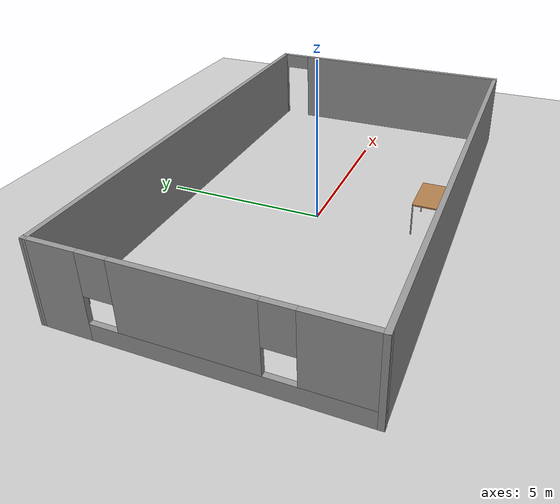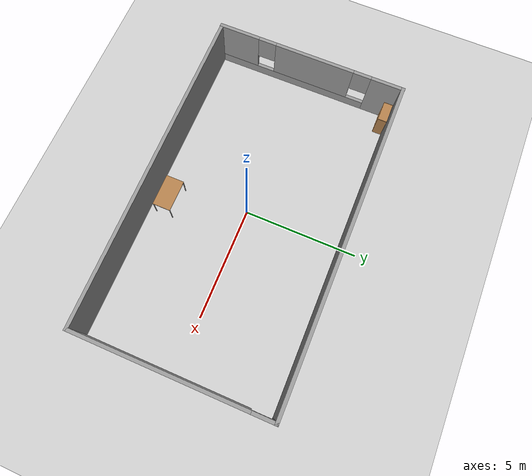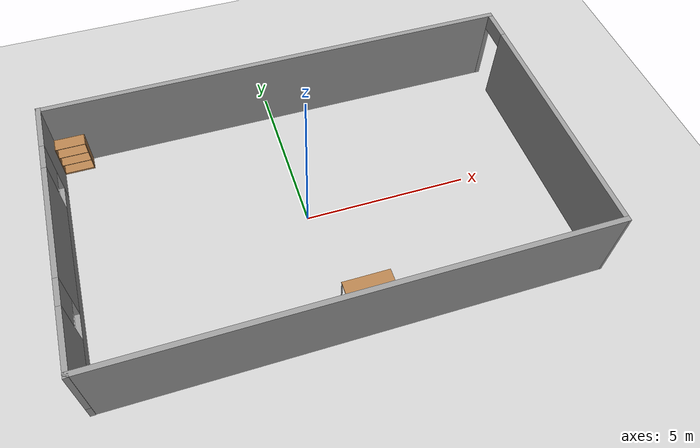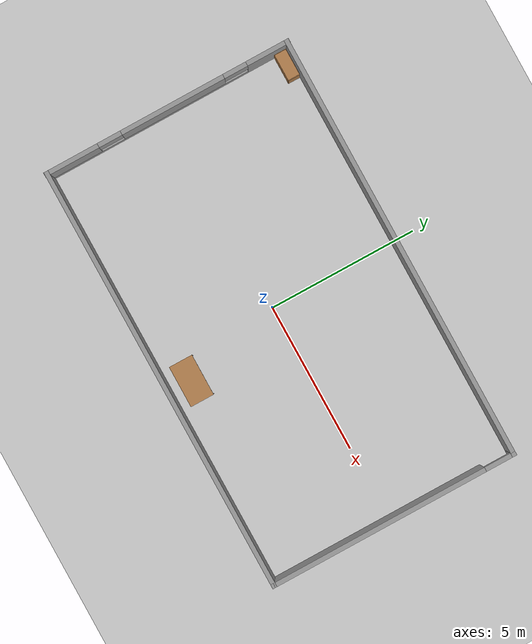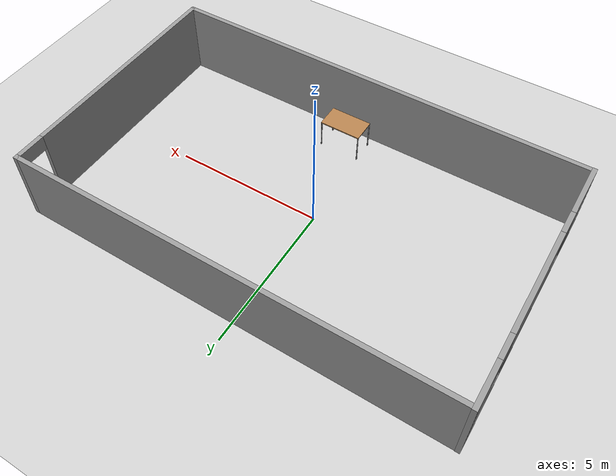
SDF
<sdf version="1.6">
 <world name="default">
  <light name="sun" type="directional">
   <pose>0 0 15 0 -0 0</pose>
   <diffuse>1 1 1 1</diffuse>
   <specular>0.1 0.1 0.1 1</specular>
   <attenuation>
    <range>1000</range>
    <constant>0.9</constant>
    <linear>0.01</linear>
    <quadratic>0.001</quadratic>
   </attenuation>
   <direction>-0.5 0.5 -1</direction>
  </light>
  <model name="ground_plane">
   <static>1</static>
   <link name="link">
    <collision name="collision">
     <geometry><plane><normal>0 0 1</normal><size>100 100</size></plane></geometry>
     <surface><friction><ode><mu>100</mu><mu2>50</mu2></ode></friction></surface>
    </collision>
    <visual name="visual">
     <cast_shadows>0</cast_shadows>
     <geometry><plane><normal>0 0 1</normal><size>100 100</size></plane></geometry>
     <material>
      <script><uri>file://media/materials/scripts/gazebo.material</uri><name>Gazebo/Grey</name></script>
     </material>
    </visual>
   </link>
  </model>
  <gravity>0 0 -9.8</gravity>
  <magnetic_field>6e-06 2.3e-05 -4.2e-05</magnetic_field>
  <atmosphere type="adiabatic"/>
  <physics name="default_physics" default="0" type="ode">
   <max_step_size>0.001</max_step_size>
   <real_time_factor>1</real_time_factor>
   <real_time_update_rate>1000</real_time_update_rate>
  </physics>
  <scene><ambient>0.4 0.4 0.4 1</ambient><background>0.7 0.7 0.7 1</background><shadows>1</shadows></scene>
  <spherical_coordinates>
   <surface_model>EARTH_WGS84</surface_model>
   <latitude_deg>0</latitude_deg>
   <longitude_deg>0</longitude_deg>
   <elevation>0</elevation>
   <heading_deg>0</heading_deg>
  </spherical_coordinates>
  <model name="myroom">
   <pose>0.293025 0.109105 0 0 -0 0</pose>
   <link name="Wall_1">
    <collision name="Wall_1_Collision">
     <geometry><box><size>14.4903 0.15 2.5</size></box></geometry>
     <pose>0 0 1.25 0 -0 0</pose>
    </collision>
    <visual name="Wall_1_Visual">
     <pose>0 0 1.25 0 -0 0</pose>
     <geometry><box><size>14.4903 0.15 2.5</size></box></geometry>
     <material>
      <script><uri>file://media/materials/scripts/gazebo.material</uri><name>Gazebo/Grey</name></script>
      <ambient>1 1 1 1</ambient>
     </material>
    </visual>
    <pose>0.004925 -4.17 0 0 -0 0.001395</pose>
   </link>
   <link name="Wall_2">
    <pose>7.17492 0.01 0 0 -0 1.5708</pose>
    <visual name="Wall_2_Visual_0">
     <pose>-0.5275 0 1.25 0 -0 0</pose>
     <geometry><box><size>7.435 0.15 2.5</size></box></geometry>
     <material>
      <script><uri>file://media/materials/scripts/gazebo.material</uri><name>Gazebo/Grey</name></script>
      <ambient>1 1 1 1</ambient>
     </material>
    </visual>
    <collision name="Wall_2_Collision_0">
     <geometry><box><size>7.435 0.15 2.5</size></box></geometry>
     <pose>-0.5275 0 1.25 0 -0 0</pose>
    </collision>
    <visual name="Wall_2_Visual_1">
     <pose>4.1675 0 1.25 0 -0 0</pose>
     <geometry><box><size>0.155 0.15 2.5</size></box></geometry>
     <material>
      <script><uri>file://media/materials/scripts/gazebo.material</uri><name>Gazebo/Grey</name></script>
      <ambient>1 1 1 1</ambient>
     </material>
    </visual>
    <collision name="Wall_2_Collision_1">
     <geometry><box><size>0.155 0.15 2.5</size></box></geometry>
     <pose>4.1675 0 1.25 0 -0 0</pose>
    </collision>
    <visual name="Wall_2_Visual_2">
     <pose>3.64 0 2.25 0 -0 0</pose>
     <geometry><box><size>0.9 0.15 0.5</size></box></geometry>
     <material>
      <script><uri>file://media/materials/scripts/gazebo.material</uri><name>Gazebo/Grey</name></script>
      <ambient>1 1 1 1</ambient>
     </material>
    </visual>
    <collision name="Wall_2_Collision_2">
     <geometry><box><size>0.9 0.15 0.5</size></box></geometry>
     <pose>3.64 0 2.25 0 -0 0</pose>
    </collision>
   </link>
   <link name="Wall_3">
    <collision name="Wall_3_Collision">
     <geometry><box><size>14.5 0.15 2.5</size></box></geometry>
     <pose>0 0 1.25 0 -0 0</pose>
    </collision>
    <visual name="Wall_3_Visual">
     <pose>0 0 1.25 0 -0 0</pose>
     <geometry><box><size>14.5 0.15 2.5</size></box></geometry>
     <material>
      <script><uri>file://media/materials/scripts/gazebo.material</uri><name>Gazebo/Grey</name></script>
      <ambient>1 1 1 1</ambient>
     </material>
    </visual>
    <pose>-7.5e-05 4.18 0 0 -0 3.14159</pose>
   </link>
   <link name="Wall_4">
    <pose>-7.17007 0 0 0 0 -1.5696</pose>
    <visual name="Wall_4_Visual_0">
     <pose>-3.51752 0 1.25 0 -0 0</pose>
     <geometry><box><size>1.49497 0.15 2.5</size></box></geometry>
     <material>
      <script><uri>file://media/materials/scripts/gazebo.material</uri><name>Gazebo/Grey</name></script>
      <ambient>1 1 1 1</ambient>
     </material>
    </visual>
    <collision name="Wall_4_Collision_0">
     <geometry><box><size>1.49497 0.15 2.5</size></box></geometry>
     <pose>-3.51752 0 1.25 0 -0 0</pose>
    </collision>
    <visual name="Wall_4_Visual_1">
     <pose>0.747487 0 0.25 0 -0 0</pose>
     <geometry><box><size>7.03503 0.15 0.5</size></box></geometry>
     <material>
      <script><uri>file://media/materials/scripts/gazebo.material</uri><name>Gazebo/Grey</name></script>
      <ambient>1 1 1 1</ambient>
     </material>
    </visual>
    <collision name="Wall_4_Collision_1">
     <geometry><box><size>7.03503 0.15 0.5</size></box></geometry>
     <pose>0.747487 0 0.25 0 -0 0</pose>
    </collision>
    <visual name="Wall_4_Visual_2">
     <pose>-0.184982 0 1.5 0 -0 0</pose>
     <geometry><box><size>3.57009 0.15 2</size></box></geometry>
     <material>
      <script><uri>file://media/materials/scripts/gazebo.material</uri><name>Gazebo/Grey</name></script>
      <ambient>1 1 1 1</ambient>
     </material>
    </visual>
    <collision name="Wall_4_Collision_2">
     <geometry><box><size>3.57009 0.15 2</size></box></geometry>
     <pose>-0.184982 0 1.5 0 -0 0</pose>
    </collision>
    <visual name="Wall_4_Visual_3">
     <pose>3.33253 0 1.5 0 -0 0</pose>
     <geometry><box><size>1.86494 0.15 2</size></box></geometry>
     <material>
      <script><uri>file://media/materials/scripts/gazebo.material</uri><name>Gazebo/Grey</name></script>
      <ambient>1 1 1 1</ambient>
     </material>
    </visual>
    <collision name="Wall_4_Collision_3">
     <geometry><box><size>1.86494 0.15 2</size></box></geometry>
     <pose>3.33253 0 1.5 0 -0 0</pose>
    </collision>
    <visual name="Wall_4_Visual_4">
     <pose>-2.37003 0 1.9 0 -0 0</pose>
     <geometry><box><size>0.8 0.15 1.2</size></box></geometry>
     <material>
      <script><uri>file://media/materials/scripts/gazebo.material</uri><name>Gazebo/Grey</name></script>
      <ambient>1 1 1 1</ambient>
     </material>
    </visual>
    <collision name="Wall_4_Collision_4">
     <geometry><box><size>0.8 0.15 1.2</size></box></geometry>
     <pose>-2.37003 0 1.9 0 -0 0</pose>
    </collision>
    <visual name="Wall_4_Visual_5">
     <pose>2.00006 0 1.9 0 -0 0</pose>
     <geometry><box><size>0.8 0.15 1.2</size></box></geometry>
     <material>
      <script><uri>file://media/materials/scripts/gazebo.material</uri><name>Gazebo/Grey</name></script>
      <ambient>1 1 1 1</ambient>
     </material>
    </visual>
    <collision name="Wall_4_Collision_5">
     <geometry><box><size>0.8 0.15 1.2</size></box></geometry>
     <pose>2.00006 0 1.9 0 -0 0</pose>
    </collision>
   </link>
   <static>1</static>
  </model>
  <model name="bookshelf">
   <static>1</static>
   <link name="link">
    <inertial><mass>1</mass></inertial>
    <collision name="back">
     <pose>0 0.005 0.6 0 -0 0</pose>
     <geometry><box><size>0.9 0.01 1.2</size></box></geometry>
    </collision>
    <visual name="visual1">
     <pose>0 0.005 0.6 0 -0 0</pose>
     <geometry><box><size>0.9 0.01 1.2</size></box></geometry>
     <material>
      <script><uri>file://media/materials/scripts/gazebo.material</uri><name>Gazebo/Wood</name></script>
     </material>
    </visual>
    <collision name="left_side">
     <pose>0.45 -0.195 0.6 0 -0 0</pose>
     <geometry><box><size>0.02 0.4 1.2</size></box></geometry>
    </collision>
    <visual name="visual2">
     <pose>0.45 -0.195 0.6 0 -0 0</pose>
     <geometry><box><size>0.02 0.4 1.2</size></box></geometry>
     <material>
      <script><uri>file://media/materials/scripts/gazebo.material</uri><name>Gazebo/Wood</name></script>
     </material>
    </visual>
    <collision name="right_side">
     <pose>-0.45 -0.195 0.6 0 -0 0</pose>
     <geometry><box><size>0.02 0.4 1.2</size></box></geometry>
    </collision>
    <visual name="visual3">
     <pose>-0.45 -0.195 0.6 0 -0 0</pose>
     <geometry><box><size>0.02 0.4 1.2</size></box></geometry>
     <material>
      <script><uri>file://media/materials/scripts/gazebo.material</uri><name>Gazebo/Wood</name></script>
     </material>
    </visual>
    <collision name="bottom">
     <pose>0 -0.195 0.03 0 -0 0</pose>
     <geometry><box><size>0.88 0.4 0.06</size></box></geometry>
    </collision>
    <visual name="visual4">
     <pose>0 -0.195 0.03 0 -0 0</pose>
     <geometry><box><size>0.88 0.4 0.06</size></box></geometry>
     <material>
      <script><uri>file://media/materials/scripts/gazebo.material</uri><name>Gazebo/Wood</name></script>
     </material>
    </visual>
    <collision name="top">
     <pose>0 -0.195 1.19 0 -0 0</pose>
     <geometry><box><size>0.88 0.4 0.02</size></box></geometry>
    </collision>
    <visual name="visual5">
     <pose>0 -0.195 1.19 0 -0 0</pose>
     <geometry><box><size>0.88 0.4 0.02</size></box></geometry>
     <material>
      <script><uri>file://media/materials/scripts/gazebo.material</uri><name>Gazebo/Wood</name></script>
     </material>
    </visual>
    <collision name="low_shelf">
     <pose>0 -0.195 0.43 0 -0 0</pose>
     <geometry><box><size>0.88 0.4 0.02</size></box></geometry>
    </collision>
    <visual name="visual6">
     <pose>0 -0.195 0.43 0 -0 0</pose>
     <geometry><box><size>0.88 0.4 0.02</size></box></geometry>
     <material>
      <script><uri>file://media/materials/scripts/gazebo.material</uri><name>Gazebo/Wood</name></script>
     </material>
    </visual>
    <collision name="high_shelf">
     <pose>0 -0.195 0.8 0 -0 0</pose>
     <geometry><box><size>0.88 0.4 0.02</size></box></geometry>
    </collision>
    <visual name="visual7">
     <pose>0 -0.195 0.8 0 -0 0</pose>
     <geometry><box><size>0.88 0.4 0.02</size></box></geometry>
     <material>
      <script><uri>file://media/materials/scripts/gazebo.material</uri><name>Gazebo/Wood</name></script>
     </material>
    </visual>
   </link>
   <pose>-6.35433 4.19721 0 0 -0 0</pose>
  </model>
  <model name="table">
   <static>0</static>
   <link name="link">
    <collision name="surface">
     <pose>0 0 1 0 -0 0</pose>
     <geometry><box><size>1.5 0.8 0.03</size></box></geometry>
     <surface><friction><ode><mu>0.6</mu><mu2>0.6</mu2></ode></friction></surface>
    </collision>
    <visual name="visual1">
     <pose>0 0 1 0 -0 0</pose>
     <geometry><box><size>1.4 0.8 0.04</size></box></geometry>
     <material>
      <script><uri>file://media/materials/scripts/gazebo.material</uri><name>Gazebo/Wood</name></script>
     </material>
    </visual>
    <collision name="front_left_leg">
     <pose>0.68 0.38 0.5 0 -0 0</pose>
     <geometry><cylinder><radius>0.02</radius><length>1</length></cylinder></geometry>
    </collision>
    <visual name="front_left_leg">
     <pose>0.68 0.38 0.5 0 -0 0</pose>
     <geometry><cylinder><radius>0.02</radius><length>1</length></cylinder></geometry>
     <material>
      <script><uri>file://media/materials/scripts/gazebo.material</uri><name>Gazebo/Grey</name></script>
     </material>
    </visual>
    <collision name="front_right_leg">
     <pose>0.68 -0.38 0.5 0 -0 0</pose>
     <geometry><cylinder><radius>0.02</radius><length>1</length></cylinder></geometry>
    </collision>
    <visual name="front_right_leg">
     <pose>0.68 -0.38 0.5 0 -0 0</pose>
     <geometry><cylinder><radius>0.02</radius><length>1</length></cylinder></geometry>
     <material>
      <script><uri>file://media/materials/scripts/gazebo.material</uri><name>Gazebo/Grey</name></script>
     </material>
    </visual>
    <collision name="back_right_leg">
     <pose>-0.68 -0.38 0.5 0 -0 0</pose>
     <geometry><cylinder><radius>0.02</radius><length>1</length></cylinder></geometry>
    </collision>
    <visual name="back_right_leg">
     <pose>-0.68 -0.38 0.5 0 -0 0</pose>
     <geometry><cylinder><radius>0.02</radius><length>1</length></cylinder></geometry>
     <material>
      <script><uri>file://media/materials/scripts/gazebo.material</uri><name>Gazebo/Grey</name></script>
     </material>
    </visual>
    <collision name="back_left_leg">
     <pose>-0.68 0.38 0.5 0 -0 0</pose>
     <geometry><cylinder><radius>0.02</radius><length>1</length></cylinder></geometry>
    </collision>
    <visual name="back_left_leg">
     <pose>-0.68 0.38 0.5 0 -0 0</pose>
     <geometry><cylinder><radius>0.02</radius><length>1</length></cylinder></geometry>
     <material>
      <script><uri>file://media/materials/scripts/gazebo.material</uri><name>Gazebo/Grey</name></script>
     </material>
    </visual>
    <inertial>
     <inertia><ixx>1</ixx><ixy>0</ixy><ixz>0</ixz><iyy>1</iyy><iyz>0</iyz><izz>1</izz></inertia>
     <mass>1</mass>
    </inertial>
   </link>
   <pose>0.78337 -3.29105 -8e-06 0 -0 0</pose>
  </model>
 </world>
</sdf>
